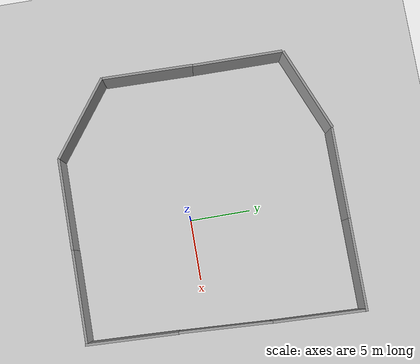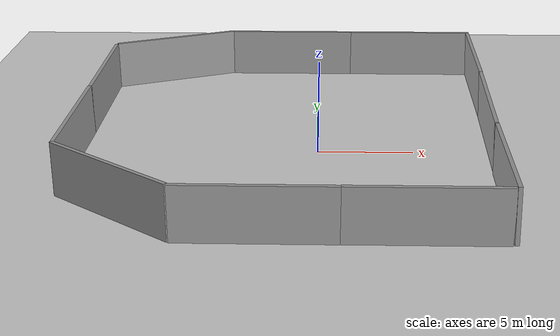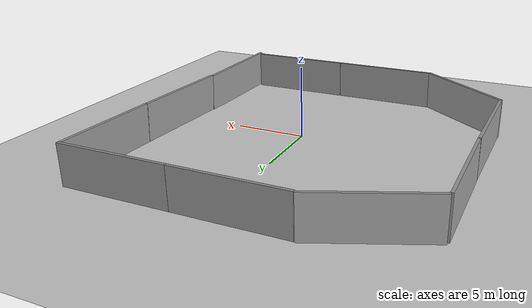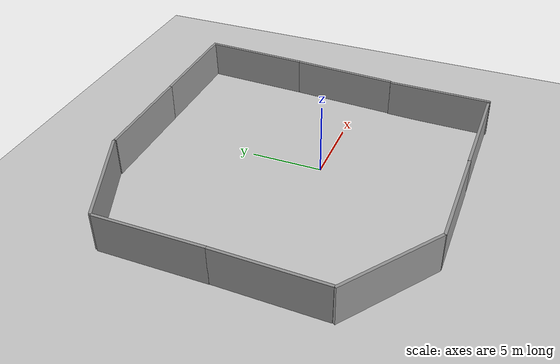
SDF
<sdf version="1.6">
 <world name="default">
  <light name="sun" type="directional">
   <pose>0 0 10 0 -0 0</pose>
   <diffuse>0.8 0.8 0.8 1</diffuse>
   <specular>0.2 0.2 0.2 1</specular>
   <attenuation>
    <range>1000</range>
    <constant>0.9</constant>
    <linear>0.01</linear>
    <quadratic>0.001</quadratic>
   </attenuation>
   <direction>-0.5 0.1 -0.9</direction>
   <spot><inner_angle>0</inner_angle><outer_angle>0</outer_angle><falloff>0</falloff></spot>
  </light>
  <model name="ground_plane">
   <static>1</static>
   <link name="link">
    <collision name="collision">
     <geometry><plane><normal>0 0 1</normal><size>100 100</size></plane></geometry>
     <surface><friction><ode><mu>100</mu><mu2>50</mu2></ode></friction></surface>
    </collision>
    <visual name="visual">
     <cast_shadows>0</cast_shadows>
     <geometry><plane><normal>0 0 1</normal><size>100 100</size></plane></geometry>
     <material>
      <script><uri>file://media/materials/scripts/gazebo.material</uri><name>Gazebo/Grey</name></script>
     </material>
    </visual>
   </link>
  </model>
  <gravity>0 0 -9.8</gravity>
  <magnetic_field>6e-06 2.3e-05 -4.2e-05</magnetic_field>
  <atmosphere type="adiabatic"/>
  <physics type="ode">
   <max_step_size>0.001</max_step_size>
   <real_time_factor>1</real_time_factor>
   <real_time_update_rate>1000</real_time_update_rate>
  </physics>
  <scene><ambient>0.4 0.4 0.4 1</ambient><background>0.7 0.7 0.7 1</background><shadows>1</shadows></scene>
  <audio><device>default</device></audio>
  <spherical_coordinates>
   <surface_model>EARTH_WGS84</surface_model>
   <latitude_deg>0</latitude_deg>
   <longitude_deg>0</longitude_deg>
   <elevation>0</elevation>
   <heading_deg>0</heading_deg>
  </spherical_coordinates>
  <model name="grey_wall">
   <static>1</static>
   <link name="link">
    <pose>0 0 1.4 0 -0 0</pose>
    <collision name="collision"><geometry><box><size>7.5 0.2 2.8</size></box></geometry></collision>
    <visual name="visual">
     <cast_shadows>0</cast_shadows>
     <geometry><box><size>7.5 0.2 2.8</size></box></geometry>
     <material>
      <script>
       <uri>model://grey_wall/materials/scripts</uri>
       <uri>model://grey_wall/materials/textures</uri>
       <name>vrc/grey_wall</name>
      </script>
     </material>
    </visual>
   </link>
   <pose>5.86487 12.6031 0 0 -0 0</pose>
  </model>
  <model name="grey_wall_0">
   <static>1</static>
   <link name="link">
    <pose>0 0 1.4 0 -0 0</pose>
    <collision name="collision"><geometry><box><size>7.5 0.2 2.8</size></box></geometry></collision>
    <visual name="visual">
     <cast_shadows>0</cast_shadows>
     <geometry><box><size>7.5 0.2 2.8</size></box></geometry>
     <material>
      <script>
       <uri>model://grey_wall/materials/scripts</uri>
       <uri>model://grey_wall/materials/textures</uri>
       <name>vrc/grey_wall</name>
      </script>
     </material>
    </visual>
   </link>
   <pose>-1.62784 12.602 0 0 -0 0</pose>
  </model>
  <model name="grey_wall_1">
   <static>1</static>
   <link name="link">
    <pose>0 0 1.4 0 -0 0</pose>
    <collision name="collision"><geometry><box><size>7.5 0.2 2.8</size></box></geometry></collision>
    <visual name="visual">
     <cast_shadows>0</cast_shadows>
     <geometry><box><size>7.5 0.2 2.8</size></box></geometry>
     <material>
      <script>
       <uri>model://grey_wall/materials/scripts</uri>
       <uri>model://grey_wall/materials/textures</uri>
       <name>vrc/grey_wall</name>
      </script>
     </material>
    </visual>
   </link>
   <pose>4.65413 -9.7096 0 0 -0 0</pose>
  </model>
  <model name="grey_wall_2">
   <static>1</static>
   <link name="link">
    <pose>0 0 1.4 0 -0 0</pose>
    <collision name="collision"><geometry><box><size>7.5 0.2 2.8</size></box></geometry></collision>
    <visual name="visual">
     <cast_shadows>0</cast_shadows>
     <geometry><box><size>7.5 0.2 2.8</size></box></geometry>
     <material>
      <script>
       <uri>model://grey_wall/materials/scripts</uri>
       <uri>model://grey_wall/materials/textures</uri>
       <name>vrc/grey_wall</name>
      </script>
     </material>
    </visual>
   </link>
   <pose>-2.83915 -9.72537 0 0 -0 0</pose>
  </model>
  <model name="grey_wall_3">
   <static>1</static>
   <link name="link">
    <pose>0 0 1.4 0 -0 0</pose>
    <collision name="collision"><geometry><box><size>7.5 0.2 2.8</size></box></geometry></collision>
    <visual name="visual">
     <cast_shadows>0</cast_shadows>
     <geometry><box><size>7.5 0.2 2.8</size></box></geometry>
     <material>
      <script>
       <uri>model://grey_wall/materials/scripts</uri>
       <uri>model://grey_wall/materials/textures</uri>
       <name>vrc/grey_wall</name>
      </script>
     </material>
    </visual>
   </link>
   <pose>8.71683 -6.15023 4e-06 0.029946 -0.020593 -1.61648</pose>
  </model>
  <model name="grey_wall_4">
   <static>1</static>
   <link name="link">
    <pose>0 0 1.4 0 -0 0</pose>
    <collision name="collision"><geometry><box><size>7.5 0.2 2.8</size></box></geometry></collision>
    <visual name="visual">
     <cast_shadows>0</cast_shadows>
     <geometry><box><size>7.5 0.2 2.8</size></box></geometry>
     <material>
      <script>
       <uri>model://grey_wall/materials/scripts</uri>
       <uri>model://grey_wall/materials/textures</uri>
       <name>vrc/grey_wall</name>
      </script>
     </material>
    </visual>
   </link>
   <pose>9.11711 1.33242 2e-06 0.050457 0 -1.62756</pose>
  </model>
  <model name="grey_wall_5">
   <static>1</static>
   <link name="link">
    <pose>0 0 1.4 0 -0 0</pose>
    <collision name="collision"><geometry><box><size>7.5 0.2 2.8</size></box></geometry></collision>
    <visual name="visual">
     <cast_shadows>0</cast_shadows>
     <geometry><box><size>7.5 0.2 2.8</size></box></geometry>
     <material>
      <script>
       <uri>model://grey_wall/materials/scripts</uri>
       <uri>model://grey_wall/materials/textures</uri>
       <name>vrc/grey_wall</name>
      </script>
     </material>
    </visual>
   </link>
   <pose>9.48852 8.79744 2e-06 0.04755 -0 -1.61273</pose>
  </model>
  <model name="grey_wall_6">
   <static>1</static>
   <link name="link">
    <pose>0 0 1.4 0 -0 0</pose>
    <collision name="collision"><geometry><box><size>7.5 0.2 2.8</size></box></geometry></collision>
    <visual name="visual">
     <cast_shadows>0</cast_shadows>
     <geometry><box><size>7.5 0.2 2.8</size></box></geometry>
     <material>
      <script>
       <uri>model://grey_wall/materials/scripts</uri>
       <uri>model://grey_wall/materials/textures</uri>
       <name>vrc/grey_wall</name>
      </script>
     </material>
    </visual>
   </link>
   <pose>-9.61481 -7.50981 -3e-06 -0.010659 -0.004744 -0.633202</pose>
  </model>
  <model name="grey_wall_7">
   <static>1</static>
   <link name="link">
    <pose>0 0 1.4 0 -0 0</pose>
    <collision name="collision"><geometry><box><size>7.5 0.2 2.8</size></box></geometry></collision>
    <visual name="visual">
     <cast_shadows>0</cast_shadows>
     <geometry><box><size>7.5 0.2 2.8</size></box></geometry>
     <material>
      <script>
       <uri>model://grey_wall/materials/scripts</uri>
       <uri>model://grey_wall/materials/textures</uri>
       <name>vrc/grey_wall</name>
      </script>
     </material>
    </visual>
   </link>
   <pose>-8.88237 11.2514 0 0 -0 0.387581</pose>
  </model>
  <model name="grey_wall_9">
   <static>1</static>
   <link name="link">
    <pose>0 0 1.4 0 -0 0</pose>
    <collision name="collision"><geometry><box><size>7.5 0.2 2.8</size></box></geometry></collision>
    <visual name="visual">
     <cast_shadows>0</cast_shadows>
     <geometry><box><size>7.5 0.2 2.8</size></box></geometry>
     <material>
      <script>
       <uri>model://grey_wall/materials/scripts</uri>
       <uri>model://grey_wall/materials/textures</uri>
       <name>vrc/grey_wall</name>
      </script>
     </material>
    </visual>
   </link>
   <pose>-12.4744 -1.46396 0 0.010219 0.003883 -1.58946</pose>
  </model>
  <model name="grey_wall_10">
   <static>1</static>
   <link name="link">
    <pose>0 0 1.4 0 -0 0</pose>
    <collision name="collision"><geometry><box><size>7.5 0.2 2.8</size></box></geometry></collision>
    <visual name="visual">
     <cast_shadows>0</cast_shadows>
     <geometry><box><size>7.5 0.2 2.8</size></box></geometry>
     <material>
      <script>
       <uri>model://grey_wall/materials/scripts</uri>
       <uri>model://grey_wall/materials/textures</uri>
       <name>vrc/grey_wall</name>
      </script>
     </material>
    </visual>
   </link>
   <pose>-12.3996 5.9996 0 0 0 -1.57515</pose>
  </model>
 </world>
</sdf>
